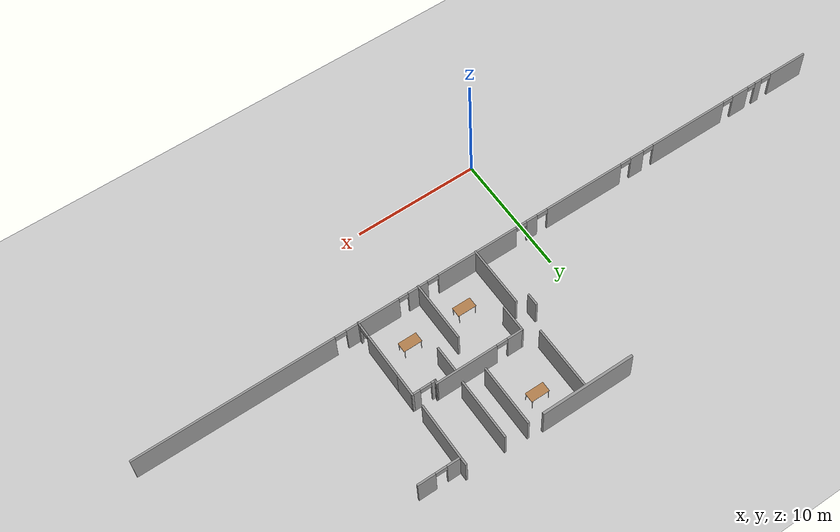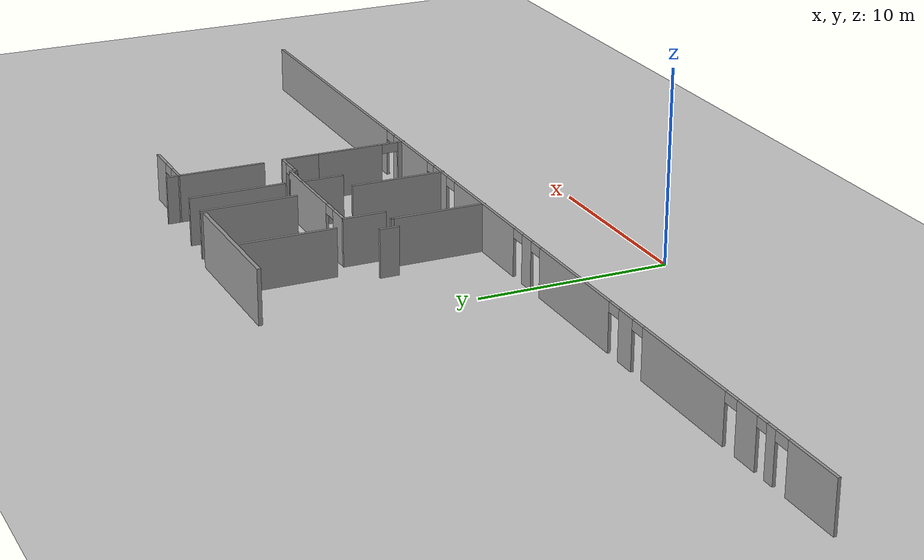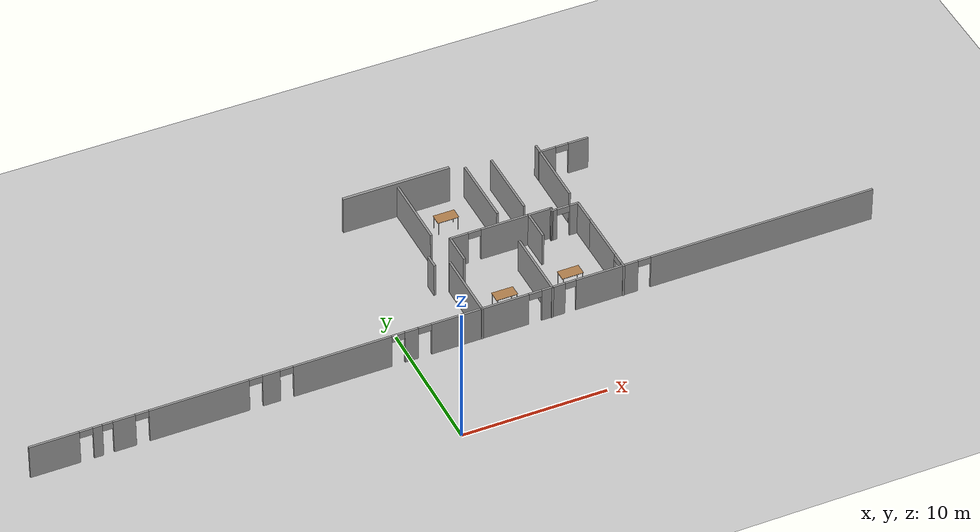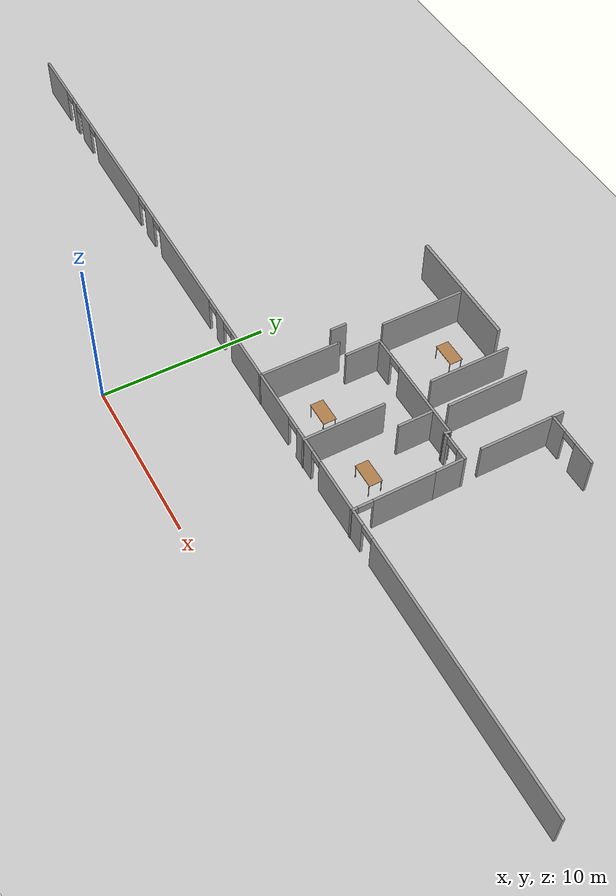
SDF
<sdf version="1.6">
 <world name="default">
  <model name="ground_plane">
   <static>1</static>
   <link name="link">
    <collision name="collision">
     <geometry><plane><normal>0 0 1</normal><size>100 100</size></plane></geometry>
     <surface><friction><ode><mu>100</mu><mu2>50</mu2></ode></friction></surface>
    </collision>
    <visual name="visual">
     <cast_shadows>0</cast_shadows>
     <geometry><plane><normal>0 0 1</normal><size>100 100</size></plane></geometry>
     <material>
      <script><uri>file://media/materials/scripts/gazebo.material</uri><name>Gazebo/Grey</name></script>
     </material>
    </visual>
   </link>
  </model>
  <model name="fin_se1f1.sdf">
   <pose>1.83798 -2.38449 0.2 0 -0 0</pose>
   <link name="Wall_140">
    <collision name="Wall_140_Collision">
     <geometry><box><size>2 0.15 2.5</size></box></geometry>
     <pose>0 0 1.25 0 -0 0</pose>
    </collision>
    <visual name="Wall_140_Visual">
     <pose>0 0 1.25 0 -0 0</pose>
     <geometry><box><size>2 0.15 2.5</size></box></geometry>
     <material>
      <script><uri>file://media/materials/scripts/gazebo.material</uri><name>Gazebo/Grey</name></script>
      <ambient>1 1 1 1</ambient>
     </material>
     <meta><layer>0</layer></meta>
    </visual>
    <pose>12.848 15.6146 0 0 -0 1.5708</pose>
   </link>
   <link name="Wall_141">
    <pose>11.923 16.5396 0 0 -0 3.14159</pose>
    <visual name="Wall_141_Visual_0">
     <pose>-0.657066 0 1.25 0 -0 0</pose>
     <geometry><box><size>0.685867 0.15 2.5</size></box></geometry>
     <material>
      <script><uri>file://media/materials/scripts/gazebo.material</uri><name>Gazebo/Grey</name></script>
      <ambient>1 1 1 1</ambient>
     </material>
     <meta><layer>0</layer></meta>
    </visual>
    <collision name="Wall_141_Collision_0">
     <geometry><box><size>0.685867 0.15 2.5</size></box></geometry>
     <pose>-0.657066 0 1.25 0 -0 0</pose>
    </collision>
    <visual name="Wall_141_Visual_1">
     <pose>0.792934 0 1.25 0 -0 0</pose>
     <geometry><box><size>0.414133 0.15 2.5</size></box></geometry>
     <material>
      <script><uri>file://media/materials/scripts/gazebo.material</uri><name>Gazebo/Grey</name></script>
      <ambient>1 1 1 1</ambient>
     </material>
     <meta><layer>0</layer></meta>
    </visual>
    <collision name="Wall_141_Collision_1">
     <geometry><box><size>0.414133 0.15 2.5</size></box></geometry>
     <pose>0.792934 0 1.25 0 -0 0</pose>
    </collision>
    <visual name="Wall_141_Visual_2">
     <pose>0.135867 0 2.25 0 -0 0</pose>
     <geometry><box><size>0.9 0.15 0.5</size></box></geometry>
     <material>
      <script><uri>file://media/materials/scripts/gazebo.material</uri><name>Gazebo/Grey</name></script>
      <ambient>1 1 1 1</ambient>
     </material>
     <meta><layer>0</layer></meta>
    </visual>
    <collision name="Wall_141_Collision_2">
     <geometry><box><size>0.9 0.15 0.5</size></box></geometry>
     <pose>0.135867 0 2.25 0 -0 0</pose>
    </collision>
   </link>
   <link name="Wall_144">
    <collision name="Wall_144_Collision">
     <geometry><box><size>2.25 0.15 2.5</size></box></geometry>
     <pose>0 0 1.25 0 -0 0</pose>
    </collision>
    <visual name="Wall_144_Visual">
     <pose>0 0 1.25 0 -0 0</pose>
     <geometry><box><size>2.25 0.15 2.5</size></box></geometry>
     <material>
      <script><uri>file://media/materials/scripts/gazebo.material</uri><name>Gazebo/Grey</name></script>
      <ambient>1 1 1 1</ambient>
     </material>
     <meta><layer>0</layer></meta>
    </visual>
    <pose>3.95745 15.7396 0 0 -0 1.5708</pose>
   </link>
   <link name="Wall_145">
    <pose>7.50746 16.7896 0 0 -0 0</pose>
    <visual name="Wall_145_Visual_0">
     <pose>-2.96499 0 1.25 0 -0 0</pose>
     <geometry><box><size>1.32002 0.15 2.5</size></box></geometry>
     <material>
      <script><uri>file://media/materials/scripts/gazebo.material</uri><name>Gazebo/Grey</name></script>
      <ambient>1 1 1 1</ambient>
     </material>
     <meta><layer>0</layer></meta>
    </visual>
    <collision name="Wall_145_Collision_0">
     <geometry><box><size>1.32002 0.15 2.5</size></box></geometry>
     <pose>-2.96499 0 1.25 0 -0 0</pose>
    </collision>
    <visual name="Wall_145_Visual_1">
     <pose>1.11001 0 1.25 0 -0 0</pose>
     <geometry><box><size>5.02998 0.15 2.5</size></box></geometry>
     <material>
      <script><uri>file://media/materials/scripts/gazebo.material</uri><name>Gazebo/Grey</name></script>
      <ambient>1 1 1 1</ambient>
     </material>
     <meta><layer>0</layer></meta>
    </visual>
    <collision name="Wall_145_Collision_1">
     <geometry><box><size>5.02998 0.15 2.5</size></box></geometry>
     <pose>1.11001 0 1.25 0 -0 0</pose>
    </collision>
    <visual name="Wall_145_Visual_2">
     <pose>-1.85498 0 2.25 0 -0 0</pose>
     <geometry><box><size>0.9 0.15 0.5</size></box></geometry>
     <material>
      <script><uri>file://media/materials/scripts/gazebo.material</uri><name>Gazebo/Grey</name></script>
      <ambient>1 1 1 1</ambient>
     </material>
     <meta><layer>0</layer></meta>
    </visual>
    <collision name="Wall_145_Collision_2">
     <geometry><box><size>0.9 0.15 0.5</size></box></geometry>
     <pose>-1.85498 0 2.25 0 -0 0</pose>
    </collision>
   </link>
   <link name="Wall_146">
    <collision name="Wall_146_Collision">
     <geometry><box><size>0.406976 0.15 2.5</size></box></geometry>
     <pose>0 0 1.25 0 -0 0</pose>
    </collision>
    <visual name="Wall_146_Visual">
     <pose>0 0 1.25 0 -0 0</pose>
     <geometry><box><size>0.406976 0.15 2.5</size></box></geometry>
     <material>
      <script><uri>file://media/materials/scripts/gazebo.material</uri><name>Gazebo/Grey</name></script>
      <ambient>1 1 1 1</ambient>
     </material>
     <meta><layer>0</layer></meta>
    </visual>
    <pose>11.0277 16.6646 0 0 0 -1.80434</pose>
   </link>
   <link name="Wall_148">
    <collision name="Wall_148_Collision">
     <geometry><box><size>2.25 0.15 2.5</size></box></geometry>
     <pose>0 0 1.25 0 -0 0</pose>
    </collision>
    <visual name="Wall_148_Visual">
     <pose>0 0 1.25 0 -0 0</pose>
     <geometry><box><size>2.25 0.15 2.5</size></box></geometry>
     <material>
      <script><uri>file://media/materials/scripts/gazebo.material</uri><name>Gazebo/Grey</name></script>
      <ambient>1 1 1 1</ambient>
     </material>
     <meta><layer>0</layer></meta>
    </visual>
    <pose>9.46821 15.7262 0 0 0 -1.5708</pose>
   </link>
   <link name="Wall_155">
    <collision name="Wall_155_Collision">
     <geometry><box><size>1 0.15 2.5</size></box></geometry>
     <pose>0 0 1.25 0 -0 0</pose>
    </collision>
    <visual name="Wall_155_Visual">
     <pose>0 0 1.25 0 -0 0</pose>
     <geometry><box><size>1 0.15 2.5</size></box></geometry>
     <material>
      <script><uri>file://media/materials/scripts/gazebo.material</uri><name>Gazebo/Grey</name></script>
      <ambient>1 1 1 1</ambient>
     </material>
     <meta><layer>0</layer></meta>
    </visual>
    <pose>1.97786 15.2812 0 0 0 -1.5708</pose>
   </link>
   <link name="Wall_157">
    <collision name="Wall_157_Collision">
     <geometry><box><size>0.160508 0.15 2.5</size></box></geometry>
     <pose>0 0 1.25 0 -0 0</pose>
    </collision>
    <visual name="Wall_157_Visual">
     <pose>0 0 1.25 0 -0 0</pose>
     <geometry><box><size>0.160508 0.15 2.5</size></box></geometry>
     <material>
      <script><uri>file://media/materials/scripts/gazebo.material</uri><name>Gazebo/Grey</name></script>
      <ambient>1 1 1 1</ambient>
     </material>
     <meta><layer>0</layer></meta>
    </visual>
    <pose>2.99441 14.6949 0 0 -0 1.5708</pose>
   </link>
   <link name="Wall_158">
    <collision name="Wall_158_Collision">
     <geometry><box><size>5 0.15 2.5</size></box></geometry>
     <pose>0 0 1.25 0 -0 0</pose>
    </collision>
    <visual name="Wall_158_Visual">
     <pose>0 0 1.25 0 -0 0</pose>
     <geometry><box><size>5 0.15 2.5</size></box></geometry>
     <material>
      <script><uri>file://media/materials/scripts/gazebo.material</uri><name>Gazebo/Grey</name></script>
      <ambient>1 1 1 1</ambient>
     </material>
     <meta><layer>0</layer></meta>
    </visual>
    <pose>2.99441 12.2751 0 0 0 -1.5708</pose>
   </link>
   <link name="Wall_160">
    <collision name="Wall_160_Collision">
     <geometry><box><size>5 0.15 2.5</size></box></geometry>
     <pose>0 0 1.25 0 -0 0</pose>
    </collision>
    <visual name="Wall_160_Visual">
     <pose>0 0 1.25 0 -0 0</pose>
     <geometry><box><size>5 0.15 2.5</size></box></geometry>
     <material>
      <script><uri>file://media/materials/scripts/gazebo.material</uri><name>Gazebo/Grey</name></script>
      <ambient>1 1 1 1</ambient>
     </material>
     <meta><layer>0</layer></meta>
    </visual>
    <pose>7.86314 12.2646 0 0 0 -1.5708</pose>
   </link>
   <link name="Wall_19">
    <pose>14.4754 22.1246 0 0 -0 3.14159</pose>
    <visual name="Wall_19_Visual_0">
     <pose>-1.03305 0 1.25 0 -0 0</pose>
     <geometry><box><size>1.43389 0.15 2.5</size></box></geometry>
     <material>
      <script><uri>file://media/materials/scripts/gazebo.material</uri><name>Gazebo/Grey</name></script>
      <ambient>1 1 1 1</ambient>
     </material>
     <meta><layer>0</layer></meta>
    </visual>
    <collision name="Wall_19_Collision_0">
     <geometry><box><size>1.43389 0.15 2.5</size></box></geometry>
     <pose>-1.03305 0 1.25 0 -0 0</pose>
    </collision>
    <visual name="Wall_19_Visual_1">
     <pose>1.16695 0 1.25 0 -0 0</pose>
     <geometry><box><size>1.16611 0.15 2.5</size></box></geometry>
     <material>
      <script><uri>file://media/materials/scripts/gazebo.material</uri><name>Gazebo/Grey</name></script>
      <ambient>1 1 1 1</ambient>
     </material>
     <meta><layer>0</layer></meta>
    </visual>
    <collision name="Wall_19_Collision_1">
     <geometry><box><size>1.16611 0.15 2.5</size></box></geometry>
     <pose>1.16695 0 1.25 0 -0 0</pose>
    </collision>
    <visual name="Wall_19_Visual_2">
     <pose>0.133892 0 2.25 0 -0 0</pose>
     <geometry><box><size>0.9 0.15 0.5</size></box></geometry>
     <material>
      <script><uri>file://media/materials/scripts/gazebo.material</uri><name>Gazebo/Grey</name></script>
      <ambient>1 1 1 1</ambient>
     </material>
     <meta><layer>0</layer></meta>
    </visual>
    <collision name="Wall_19_Collision_2">
     <geometry><box><size>0.9 0.15 0.5</size></box></geometry>
     <pose>0.133892 0 2.25 0 -0 0</pose>
    </collision>
   </link>
   <link name="Wall_20">
    <collision name="Wall_20_Collision">
     <geometry><box><size>0.75 0.15 2.5</size></box></geometry>
     <pose>0 0 1.25 0 -0 0</pose>
    </collision>
    <visual name="Wall_20_Visual">
     <pose>0 0 1.25 0 -0 0</pose>
     <geometry><box><size>0.75 0.15 2.5</size></box></geometry>
     <material>
      <script><uri>file://media/materials/scripts/gazebo.material</uri><name>Gazebo/Grey</name></script>
      <ambient>1 1 1 1</ambient>
     </material>
     <meta><layer>0</layer></meta>
    </visual>
    <pose>12.8004 22.4246 0 0 -0 1.5708</pose>
   </link>
   <link name="Wall_30">
    <pose>1.50043 9.87457 0 0 -0 0</pose>
    <visual name="Wall_30_Visual_0">
     <pose>-27.4547 0 1.25 0 -0 0</pose>
     <geometry><box><size>3.34055 0.15 2.5</size></box></geometry>
     <material>
      <script><uri>file://media/materials/scripts/gazebo.material</uri><name>Gazebo/Grey</name></script>
      <ambient>1 1 1 1</ambient>
     </material>
     <meta><layer>0</layer></meta>
    </visual>
    <collision name="Wall_30_Collision_0">
     <geometry><box><size>3.34055 0.15 2.5</size></box></geometry>
     <pose>-27.4547 0 1.25 0 -0 0</pose>
    </collision>
    <visual name="Wall_30_Visual_1">
     <pose>-24.5701 0 1.25 0 -0 0</pose>
     <geometry><box><size>0.628632 0.15 2.5</size></box></geometry>
     <material>
      <script><uri>file://media/materials/scripts/gazebo.material</uri><name>Gazebo/Grey</name></script>
      <ambient>1 1 1 1</ambient>
     </material>
     <meta><layer>0</layer></meta>
    </visual>
    <collision name="Wall_30_Collision_1">
     <geometry><box><size>0.628632 0.15 2.5</size></box></geometry>
     <pose>-24.5701 0 1.25 0 -0 0</pose>
    </collision>
    <visual name="Wall_30_Visual_2">
     <pose>-22.8102 0 1.25 0 -0 0</pose>
     <geometry><box><size>1.49352 0.15 2.5</size></box></geometry>
     <material>
      <script><uri>file://media/materials/scripts/gazebo.material</uri><name>Gazebo/Grey</name></script>
      <ambient>1 1 1 1</ambient>
     </material>
     <meta><layer>0</layer></meta>
    </visual>
    <collision name="Wall_30_Collision_2">
     <geometry><box><size>1.49352 0.15 2.5</size></box></geometry>
     <pose>-22.8102 0 1.25 0 -0 0</pose>
    </collision>
    <visual name="Wall_30_Visual_3">
     <pose>-17.8019 0 1.25 0 -0 0</pose>
     <geometry><box><size>6.72304 0.15 2.5</size></box></geometry>
     <material>
      <script><uri>file://media/materials/scripts/gazebo.material</uri><name>Gazebo/Grey</name></script>
      <ambient>1 1 1 1</ambient>
     </material>
     <meta><layer>0</layer></meta>
    </visual>
    <collision name="Wall_30_Collision_3">
     <geometry><box><size>6.72304 0.15 2.5</size></box></geometry>
     <pose>-17.8019 0 1.25 0 -0 0</pose>
    </collision>
    <visual name="Wall_30_Visual_4">
     <pose>-12.9445 0 1.25 0 -0 0</pose>
     <geometry><box><size>1.19181 0.15 2.5</size></box></geometry>
     <material>
      <script><uri>file://media/materials/scripts/gazebo.material</uri><name>Gazebo/Grey</name></script>
      <ambient>1 1 1 1</ambient>
     </material>
     <meta><layer>0</layer></meta>
    </visual>
    <collision name="Wall_30_Collision_4">
     <geometry><box><size>1.19181 0.15 2.5</size></box></geometry>
     <pose>-12.9445 0 1.25 0 -0 0</pose>
    </collision>
    <visual name="Wall_30_Visual_5">
     <pose>-8.09712 0 1.25 0 -0 0</pose>
     <geometry><box><size>6.70293 0.15 2.5</size></box></geometry>
     <material>
      <script><uri>file://media/materials/scripts/gazebo.material</uri><name>Gazebo/Grey</name></script>
      <ambient>1 1 1 1</ambient>
     </material>
     <meta><layer>0</layer></meta>
    </visual>
    <collision name="Wall_30_Collision_5">
     <geometry><box><size>6.70293 0.15 2.5</size></box></geometry>
     <pose>-8.09712 0 1.25 0 -0 0</pose>
    </collision>
    <visual name="Wall_30_Visual_6">
     <pose>-3.38049 0 1.25 0 -0 0</pose>
     <geometry><box><size>0.930335 0.15 2.5</size></box></geometry>
     <material>
      <script><uri>file://media/materials/scripts/gazebo.material</uri><name>Gazebo/Grey</name></script>
      <ambient>1 1 1 1</ambient>
     </material>
     <meta><layer>0</layer></meta>
    </visual>
    <collision name="Wall_30_Collision_6">
     <geometry><box><size>0.930335 0.15 2.5</size></box></geometry>
     <pose>-3.38049 0 1.25 0 -0 0</pose>
    </collision>
    <visual name="Wall_30_Visual_7">
     <pose>1.35626 0 1.25 0 -0 0</pose>
     <geometry><box><size>6.74316 0.15 2.5</size></box></geometry>
     <material>
      <script><uri>file://media/materials/scripts/gazebo.material</uri><name>Gazebo/Grey</name></script>
      <ambient>1 1 1 1</ambient>
     </material>
     <meta><layer>0</layer></meta>
    </visual>
    <collision name="Wall_30_Collision_7">
     <geometry><box><size>6.74316 0.15 2.5</size></box></geometry>
     <pose>1.35626 0 1.25 0 -0 0</pose>
    </collision>
    <visual name="Wall_30_Visual_8">
     <pose>6.44499 0 1.25 0 -0 0</pose>
     <geometry><box><size>1.63431 0.15 2.5</size></box></geometry>
     <material>
      <script><uri>file://media/materials/scripts/gazebo.material</uri><name>Gazebo/Grey</name></script>
      <ambient>1 1 1 1</ambient>
     </material>
     <meta><layer>0</layer></meta>
    </visual>
    <collision name="Wall_30_Collision_8">
     <geometry><box><size>1.63431 0.15 2.5</size></box></geometry>
     <pose>6.44499 0 1.25 0 -0 0</pose>
    </collision>
    <visual name="Wall_30_Visual_9">
     <pose>10.1962 0 1.25 0 -0 0</pose>
     <geometry><box><size>4.34964 0.15 2.5</size></box></geometry>
     <material>
      <script><uri>file://media/materials/scripts/gazebo.material</uri><name>Gazebo/Grey</name></script>
      <ambient>1 1 1 1</ambient>
     </material>
     <meta><layer>0</layer></meta>
    </visual>
    <collision name="Wall_30_Collision_9">
     <geometry><box><size>4.34964 0.15 2.5</size></box></geometry>
     <pose>10.1962 0 1.25 0 -0 0</pose>
    </collision>
    <visual name="Wall_30_Visual_10">
     <pose>21.198 0 1.25 0 -0 0</pose>
     <geometry><box><size>15.854 0.15 2.5</size></box></geometry>
     <material>
      <script><uri>file://media/materials/scripts/gazebo.material</uri><name>Gazebo/Grey</name></script>
      <ambient>1 1 1 1</ambient>
     </material>
     <meta><layer>0</layer></meta>
    </visual>
    <collision name="Wall_30_Collision_10">
     <geometry><box><size>15.854 0.15 2.5</size></box></geometry>
     <pose>21.198 0 1.25 0 -0 0</pose>
    </collision>
    <visual name="Wall_30_Visual_11">
     <pose>-25.3345 0 2.25 0 -0 0</pose>
     <geometry><box><size>0.9 0.15 0.5</size></box></geometry>
     <material>
      <script><uri>file://media/materials/scripts/gazebo.material</uri><name>Gazebo/Grey</name></script>
      <ambient>1 1 1 1</ambient>
     </material>
     <meta><layer>0</layer></meta>
    </visual>
    <collision name="Wall_30_Collision_11">
     <geometry><box><size>0.9 0.15 0.5</size></box></geometry>
     <pose>-25.3345 0 2.25 0 -0 0</pose>
    </collision>
    <visual name="Wall_30_Visual_12">
     <pose>-23.9064 0 2.25 0 -0 0</pose>
     <geometry><box><size>0.698864 0.15 0.5</size></box></geometry>
     <material>
      <script><uri>file://media/materials/scripts/gazebo.material</uri><name>Gazebo/Grey</name></script>
      <ambient>1 1 1 1</ambient>
     </material>
     <meta><layer>0</layer></meta>
    </visual>
    <collision name="Wall_30_Collision_12">
     <geometry><box><size>0.698864 0.15 0.5</size></box></geometry>
     <pose>-23.9064 0 2.25 0 -0 0</pose>
    </collision>
    <visual name="Wall_30_Visual_13">
     <pose>-21.6134 0 2.25 0 -0 0</pose>
     <geometry><box><size>0.9 0.15 0.5</size></box></geometry>
     <material>
      <script><uri>file://media/materials/scripts/gazebo.material</uri><name>Gazebo/Grey</name></script>
      <ambient>1 1 1 1</ambient>
     </material>
     <meta><layer>0</layer></meta>
    </visual>
    <collision name="Wall_30_Collision_13">
     <geometry><box><size>0.9 0.15 0.5</size></box></geometry>
     <pose>-21.6134 0 2.25 0 -0 0</pose>
    </collision>
    <visual name="Wall_30_Visual_14">
     <pose>-13.9904 0 2.25 0 -0 0</pose>
     <geometry><box><size>0.9 0.15 0.5</size></box></geometry>
     <material>
      <script><uri>file://media/materials/scripts/gazebo.material</uri><name>Gazebo/Grey</name></script>
      <ambient>1 1 1 1</ambient>
     </material>
     <meta><layer>0</layer></meta>
    </visual>
    <collision name="Wall_30_Collision_14">
     <geometry><box><size>0.9 0.15 0.5</size></box></geometry>
     <pose>-13.9904 0 2.25 0 -0 0</pose>
    </collision>
    <visual name="Wall_30_Visual_15">
     <pose>-11.8986 0 2.25 0 -0 0</pose>
     <geometry><box><size>0.9 0.15 0.5</size></box></geometry>
     <material>
      <script><uri>file://media/materials/scripts/gazebo.material</uri><name>Gazebo/Grey</name></script>
      <ambient>1 1 1 1</ambient>
     </material>
     <meta><layer>0</layer></meta>
    </visual>
    <collision name="Wall_30_Collision_15">
     <geometry><box><size>0.9 0.15 0.5</size></box></geometry>
     <pose>-11.8986 0 2.25 0 -0 0</pose>
    </collision>
    <visual name="Wall_30_Visual_16">
     <pose>-4.29566 0 2.25 0 -0 0</pose>
     <geometry><box><size>0.9 0.15 0.5</size></box></geometry>
     <material>
      <script><uri>file://media/materials/scripts/gazebo.material</uri><name>Gazebo/Grey</name></script>
      <ambient>1 1 1 1</ambient>
     </material>
     <meta><layer>0</layer></meta>
    </visual>
    <collision name="Wall_30_Collision_16">
     <geometry><box><size>0.9 0.15 0.5</size></box></geometry>
     <pose>-4.29566 0 2.25 0 -0 0</pose>
    </collision>
    <visual name="Wall_30_Visual_17">
     <pose>-2.46532 0 2.25 0 -0 0</pose>
     <geometry><box><size>0.9 0.15 0.5</size></box></geometry>
     <material>
      <script><uri>file://media/materials/scripts/gazebo.material</uri><name>Gazebo/Grey</name></script>
      <ambient>1 1 1 1</ambient>
     </material>
     <meta><layer>0</layer></meta>
    </visual>
    <collision name="Wall_30_Collision_17">
     <geometry><box><size>0.9 0.15 0.5</size></box></geometry>
     <pose>-2.46532 0 2.25 0 -0 0</pose>
    </collision>
    <visual name="Wall_30_Visual_18">
     <pose>5.17784 0 2.25 0 -0 0</pose>
     <geometry><box><size>0.9 0.15 0.5</size></box></geometry>
     <material>
      <script><uri>file://media/materials/scripts/gazebo.material</uri><name>Gazebo/Grey</name></script>
      <ambient>1 1 1 1</ambient>
     </material>
     <meta><layer>0</layer></meta>
    </visual>
    <collision name="Wall_30_Collision_18">
     <geometry><box><size>0.9 0.15 0.5</size></box></geometry>
     <pose>5.17784 0 2.25 0 -0 0</pose>
    </collision>
    <visual name="Wall_30_Visual_19">
     <pose>7.64175 0 2.25 0 -0 0</pose>
     <geometry><box><size>0.759205 0.15 0.5</size></box></geometry>
     <material>
      <script><uri>file://media/materials/scripts/gazebo.material</uri><name>Gazebo/Grey</name></script>
      <ambient>1 1 1 1</ambient>
     </material>
     <meta><layer>0</layer></meta>
    </visual>
    <collision name="Wall_30_Collision_19">
     <geometry><box><size>0.759205 0.15 0.5</size></box></geometry>
     <pose>7.64175 0 2.25 0 -0 0</pose>
    </collision>
    <visual name="Wall_30_Visual_20">
     <pose>12.821 0 2.25 0 -0 0</pose>
     <geometry><box><size>0.9 0.15 0.5</size></box></geometry>
     <material>
      <script><uri>file://media/materials/scripts/gazebo.material</uri><name>Gazebo/Grey</name></script>
      <ambient>1 1 1 1</ambient>
     </material>
     <meta><layer>0</layer></meta>
    </visual>
    <collision name="Wall_30_Collision_20">
     <geometry><box><size>0.9 0.15 0.5</size></box></geometry>
     <pose>12.821 0 2.25 0 -0 0</pose>
    </collision>
   </link>
   <link name="Wall_70">
    <collision name="Wall_70_Collision">
     <geometry><box><size>4.60106 0.15 2.5</size></box></geometry>
     <pose>0 0 1.25 0 -0 0</pose>
    </collision>
    <visual name="Wall_70_Visual">
     <pose>0 0 1.25 0 -0 0</pose>
     <geometry><box><size>4.60106 0.15 2.5</size></box></geometry>
     <material>
      <script><uri>file://media/materials/scripts/gazebo.material</uri><name>Gazebo/Grey</name></script>
      <ambient>1 1 1 1</ambient>
     </material>
     <meta><layer>0</layer></meta>
    </visual>
    <pose>12.7793 19.8991 0 0 -0 1.5613</pose>
   </link>
   <link name="Wall_72">
    <collision name="Wall_72_Collision">
     <geometry><box><size>5 0.15 2.5</size></box></geometry>
     <pose>0 0 1.25 0 -0 0</pose>
    </collision>
    <visual name="Wall_72_Visual">
     <pose>0 0 1.25 0 -0 0</pose>
     <geometry><box><size>5 0.15 2.5</size></box></geometry>
     <material>
      <script><uri>file://media/materials/scripts/gazebo.material</uri><name>Gazebo/Grey</name></script>
      <ambient>1 1 1 1</ambient>
     </material>
     <meta><layer>0</layer></meta>
    </visual>
    <pose>9.57098 20.1709 0 0 0 -1.5708</pose>
   </link>
   <link name="Wall_74">
    <collision name="Wall_74_Collision">
     <geometry><box><size>5 0.15 2.5</size></box></geometry>
     <pose>0 0 1.25 0 -0 0</pose>
    </collision>
    <visual name="Wall_74_Visual">
     <pose>0 0 1.25 0 -0 0</pose>
     <geometry><box><size>5 0.15 2.5</size></box></geometry>
     <material>
      <script><uri>file://media/materials/scripts/gazebo.material</uri><name>Gazebo/Grey</name></script>
      <ambient>1 1 1 1</ambient>
     </material>
     <meta><layer>0</layer></meta>
    </visual>
    <pose>7.72515 20.2325 0 0 0 -1.5708</pose>
   </link>
   <link name="Wall_76">
    <collision name="Wall_76_Collision">
     <geometry><box><size>5.25 0.15 2.5</size></box></geometry>
     <pose>0 0 1.25 0 -0 0</pose>
    </collision>
    <visual name="Wall_76_Visual">
     <pose>0 0 1.25 0 -0 0</pose>
     <geometry><box><size>5.25 0.15 2.5</size></box></geometry>
     <material>
      <script><uri>file://media/materials/scripts/gazebo.material</uri><name>Gazebo/Grey</name></script>
      <ambient>1 1 1 1</ambient>
     </material>
     <meta><layer>0</layer></meta>
    </visual>
    <pose>2.9875 20.1729 0 0 0 -1.5708</pose>
   </link>
   <link name="Wall_89">
    <pose>12.848 12.2646 0 0 0 -1.5708</pose>
    <visual name="Wall_89_Visual_0">
     <pose>-0.649847 0 1.25 0 -0 0</pose>
     <geometry><box><size>3.70031 0.15 2.5</size></box></geometry>
     <material>
      <script><uri>file://media/materials/scripts/gazebo.material</uri><name>Gazebo/Grey</name></script>
      <ambient>1 1 1 1</ambient>
     </material>
     <meta><layer>0</layer></meta>
    </visual>
    <collision name="Wall_89_Collision_0">
     <geometry><box><size>3.70031 0.15 2.5</size></box></geometry>
     <pose>-0.649847 0 1.25 0 -0 0</pose>
    </collision>
    <visual name="Wall_89_Visual_1">
     <pose>2.30015 0 1.25 0 -0 0</pose>
     <geometry><box><size>0.399694 0.15 2.5</size></box></geometry>
     <material>
      <script><uri>file://media/materials/scripts/gazebo.material</uri><name>Gazebo/Grey</name></script>
      <ambient>1 1 1 1</ambient>
     </material>
     <meta><layer>0</layer></meta>
    </visual>
    <collision name="Wall_89_Collision_1">
     <geometry><box><size>0.399694 0.15 2.5</size></box></geometry>
     <pose>2.30015 0 1.25 0 -0 0</pose>
    </collision>
    <visual name="Wall_89_Visual_2">
     <pose>1.65031 0 2.25 0 -0 0</pose>
     <geometry><box><size>0.9 0.15 0.5</size></box></geometry>
     <material>
      <script><uri>file://media/materials/scripts/gazebo.material</uri><name>Gazebo/Grey</name></script>
      <ambient>1 1 1 1</ambient>
     </material>
     <meta><layer>0</layer></meta>
    </visual>
    <collision name="Wall_89_Collision_2">
     <geometry><box><size>0.9 0.15 0.5</size></box></geometry>
     <pose>1.65031 0 2.25 0 -0 0</pose>
    </collision>
   </link>
   <static>1</static>
  </model>
  <model name="table_10">
   <static>1</static>
   <link name="link">
    <collision name="surface">
     <pose>0 0 1 0 -0 0</pose>
     <geometry><box><size>1.5 0.8 0.03</size></box></geometry>
     <surface><friction><ode><mu>0.6</mu><mu2>0.6</mu2></ode></friction></surface>
    </collision>
    <visual name="visual1">
     <pose>0 0 1 0 -0 0</pose>
     <geometry><box><size>1.5 0.8 0.03</size></box></geometry>
     <material>
      <script><uri>file://media/materials/scripts/gazebo.material</uri><name>Gazebo/Wood</name></script>
     </material>
    </visual>
    <collision name="front_left_leg">
     <pose>0.68 0.38 0.5 0 -0 0</pose>
     <geometry><cylinder><radius>0.02</radius><length>1</length></cylinder></geometry>
    </collision>
    <visual name="front_left_leg">
     <pose>0.68 0.38 0.5 0 -0 0</pose>
     <geometry><cylinder><radius>0.02</radius><length>1</length></cylinder></geometry>
     <material>
      <script><uri>file://media/materials/scripts/gazebo.material</uri><name>Gazebo/Grey</name></script>
     </material>
    </visual>
    <collision name="front_right_leg">
     <pose>0.68 -0.38 0.5 0 -0 0</pose>
     <geometry><cylinder><radius>0.02</radius><length>1</length></cylinder></geometry>
    </collision>
    <visual name="front_right_leg">
     <pose>0.68 -0.38 0.5 0 -0 0</pose>
     <geometry><cylinder><radius>0.02</radius><length>1</length></cylinder></geometry>
     <material>
      <script><uri>file://media/materials/scripts/gazebo.material</uri><name>Gazebo/Grey</name></script>
     </material>
    </visual>
    <collision name="back_right_leg">
     <pose>-0.68 -0.38 0.5 0 -0 0</pose>
     <geometry><cylinder><radius>0.02</radius><length>1</length></cylinder></geometry>
    </collision>
    <visual name="back_right_leg">
     <pose>-0.68 -0.38 0.5 0 -0 0</pose>
     <geometry><cylinder><radius>0.02</radius><length>1</length></cylinder></geometry>
     <material>
      <script><uri>file://media/materials/scripts/gazebo.material</uri><name>Gazebo/Grey</name></script>
     </material>
    </visual>
    <collision name="back_left_leg">
     <pose>-0.68 0.38 0.5 0 -0 0</pose>
     <geometry><cylinder><radius>0.02</radius><length>1</length></cylinder></geometry>
    </collision>
    <visual name="back_left_leg">
     <pose>-0.68 0.38 0.5 0 -0 0</pose>
     <geometry><cylinder><radius>0.02</radius><length>1</length></cylinder></geometry>
     <material>
      <script><uri>file://media/materials/scripts/gazebo.material</uri><name>Gazebo/Grey</name></script>
     </material>
    </visual>
   </link>
   <pose>7.52632 9.88124 0 0 -0 0</pose>
  </model>
  <model name="table_11">
   <static>1</static>
   <link name="link">
    <collision name="surface">
     <pose>0 0 1 0 -0 0</pose>
     <geometry><box><size>1.5 0.8 0.03</size></box></geometry>
     <surface><friction><ode><mu>0.6</mu><mu2>0.6</mu2></ode></friction></surface>
    </collision>
    <visual name="visual1">
     <pose>0 0 1 0 -0 0</pose>
     <geometry><box><size>1.5 0.8 0.03</size></box></geometry>
     <material>
      <script><uri>file://media/materials/scripts/gazebo.material</uri><name>Gazebo/Wood</name></script>
     </material>
    </visual>
    <collision name="front_left_leg">
     <pose>0.68 0.38 0.5 0 -0 0</pose>
     <geometry><cylinder><radius>0.02</radius><length>1</length></cylinder></geometry>
    </collision>
    <visual name="front_left_leg">
     <pose>0.68 0.38 0.5 0 -0 0</pose>
     <geometry><cylinder><radius>0.02</radius><length>1</length></cylinder></geometry>
     <material>
      <script><uri>file://media/materials/scripts/gazebo.material</uri><name>Gazebo/Grey</name></script>
     </material>
    </visual>
    <collision name="front_right_leg">
     <pose>0.68 -0.38 0.5 0 -0 0</pose>
     <geometry><cylinder><radius>0.02</radius><length>1</length></cylinder></geometry>
    </collision>
    <visual name="front_right_leg">
     <pose>0.68 -0.38 0.5 0 -0 0</pose>
     <geometry><cylinder><radius>0.02</radius><length>1</length></cylinder></geometry>
     <material>
      <script><uri>file://media/materials/scripts/gazebo.material</uri><name>Gazebo/Grey</name></script>
     </material>
    </visual>
    <collision name="back_right_leg">
     <pose>-0.68 -0.38 0.5 0 -0 0</pose>
     <geometry><cylinder><radius>0.02</radius><length>1</length></cylinder></geometry>
    </collision>
    <visual name="back_right_leg">
     <pose>-0.68 -0.38 0.5 0 -0 0</pose>
     <geometry><cylinder><radius>0.02</radius><length>1</length></cylinder></geometry>
     <material>
      <script><uri>file://media/materials/scripts/gazebo.material</uri><name>Gazebo/Grey</name></script>
     </material>
    </visual>
    <collision name="back_left_leg">
     <pose>-0.68 0.38 0.5 0 -0 0</pose>
     <geometry><cylinder><radius>0.02</radius><length>1</length></cylinder></geometry>
    </collision>
    <visual name="back_left_leg">
     <pose>-0.68 0.38 0.5 0 -0 0</pose>
     <geometry><cylinder><radius>0.02</radius><length>1</length></cylinder></geometry>
     <material>
      <script><uri>file://media/materials/scripts/gazebo.material</uri><name>Gazebo/Grey</name></script>
     </material>
    </visual>
   </link>
   <pose>7.23952 18.2095 0 0 -0 0</pose>
  </model>
  <model name="table_12">
   <static>1</static>
   <link name="link">
    <collision name="surface">
     <pose>0 0 1 0 -0 0</pose>
     <geometry><box><size>1.5 0.8 0.03</size></box></geometry>
     <surface><friction><ode><mu>0.6</mu><mu2>0.6</mu2></ode></friction></surface>
    </collision>
    <visual name="visual1">
     <pose>0 0 1 0 -0 0</pose>
     <geometry><box><size>1.5 0.8 0.03</size></box></geometry>
     <material>
      <script><uri>file://media/materials/scripts/gazebo.material</uri><name>Gazebo/Wood</name></script>
     </material>
    </visual>
    <collision name="front_left_leg">
     <pose>0.68 0.38 0.5 0 -0 0</pose>
     <geometry><cylinder><radius>0.02</radius><length>1</length></cylinder></geometry>
    </collision>
    <visual name="front_left_leg">
     <pose>0.68 0.38 0.5 0 -0 0</pose>
     <geometry><cylinder><radius>0.02</radius><length>1</length></cylinder></geometry>
     <material>
      <script><uri>file://media/materials/scripts/gazebo.material</uri><name>Gazebo/Grey</name></script>
     </material>
    </visual>
    <collision name="front_right_leg">
     <pose>0.68 -0.38 0.5 0 -0 0</pose>
     <geometry><cylinder><radius>0.02</radius><length>1</length></cylinder></geometry>
    </collision>
    <visual name="front_right_leg">
     <pose>0.68 -0.38 0.5 0 -0 0</pose>
     <geometry><cylinder><radius>0.02</radius><length>1</length></cylinder></geometry>
     <material>
      <script><uri>file://media/materials/scripts/gazebo.material</uri><name>Gazebo/Grey</name></script>
     </material>
    </visual>
    <collision name="back_right_leg">
     <pose>-0.68 -0.38 0.5 0 -0 0</pose>
     <geometry><cylinder><radius>0.02</radius><length>1</length></cylinder></geometry>
    </collision>
    <visual name="back_right_leg">
     <pose>-0.68 -0.38 0.5 0 -0 0</pose>
     <geometry><cylinder><radius>0.02</radius><length>1</length></cylinder></geometry>
     <material>
      <script><uri>file://media/materials/scripts/gazebo.material</uri><name>Gazebo/Grey</name></script>
     </material>
    </visual>
    <collision name="back_left_leg">
     <pose>-0.68 0.38 0.5 0 -0 0</pose>
     <geometry><cylinder><radius>0.02</radius><length>1</length></cylinder></geometry>
    </collision>
    <visual name="back_left_leg">
     <pose>-0.68 0.38 0.5 0 -0 0</pose>
     <geometry><cylinder><radius>0.02</radius><length>1</length></cylinder></geometry>
     <material>
      <script><uri>file://media/materials/scripts/gazebo.material</uri><name>Gazebo/Grey</name></script>
     </material>
    </visual>
   </link>
   <pose>12.1915 9.99779 0 0 -0 0</pose>
  </model>
  <model name="grey_wall_3">
   <static>1</static>
   <link name="link">
    <pose>0 0 1.4 0 -0 0</pose>
    <collision name="collision"><geometry><box><size>7.5 0.2 2.8</size></box></geometry></collision>
    <visual name="visual">
     <cast_shadows>0</cast_shadows>
     <geometry><box><size>7.5 0.2 2.8</size></box></geometry>
     <material>
      <script>
       <uri>model://grey_wall/materials/scripts</uri>
       <uri>model://grey_wall/materials/textures</uri>
       <name>vrc/grey_wall</name>
      </script>
     </material>
    </visual>
   </link>
   <pose>4.72968 20.456 0.2 0 -0 0</pose>
  </model>
 </world>
</sdf>
